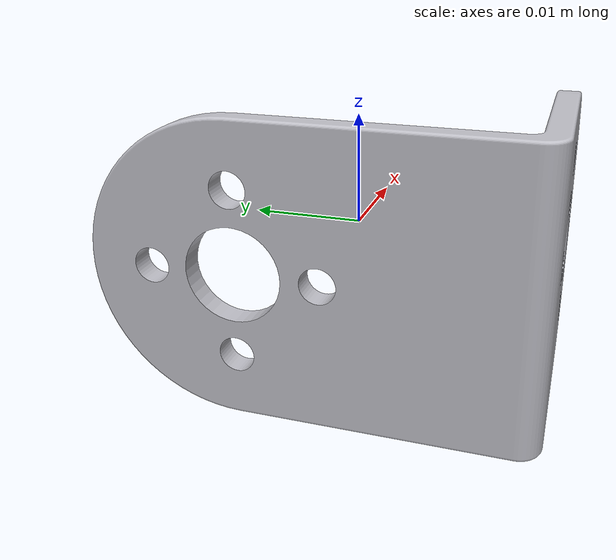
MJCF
<?xml version='1.0' encoding='utf-8'?>
<mujoco model="part_L_bracket">
  <compiler angle="radian" meshdir="." autolimits="true"/>
  <visual>
    <global offwidth="1024" offheight="1024"/>
    <headlight ambient="0.55 0.55 0.55" diffuse="0.6 0.6 0.6" specular="0.2 0.2 0.2"/>
  </visual>
  <default>
    <default class="visual"><geom type="mesh" contype="0" conaffinity="0" group="2" density="0"/></default>
    <default class="collision"><geom type="mesh" group="3"/></default>
  </default>
  <asset>
    <mesh name="L_bracket" file="L型支架.STL" scale="0.001 0.001 0.001"/>
    <material name="bracket" rgba="0.75 0.75 0.78 1"/>
  </asset>
  <worldbody>
    <!-- source L型支架.STL: bbox min 0.001254 0.001254 0.001254 max 28.488668 36.988667 25.001253 mm, size 28.487414 36.987413 24.999999 mm -->
    <body name="L_bracket">
      <geom name="L_bracket_visual" mesh="L_bracket" class="visual" material="bracket" pos="-0.014245 -0.018495 -0.012501"/>
      <geom name="L_bracket_collision" mesh="L_bracket" class="collision" pos="-0.014245 -0.018495 -0.012501" density="2700"/>
    </body>
  </worldbody>
</mujoco>
